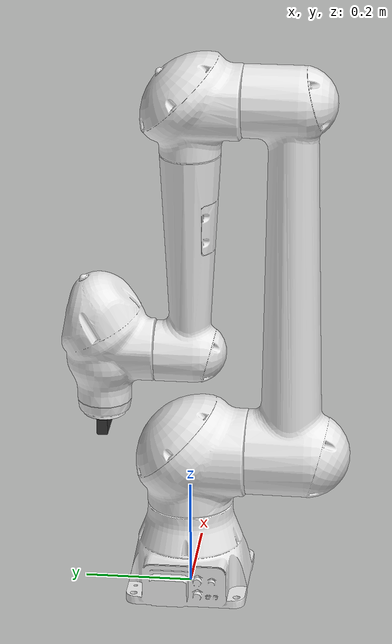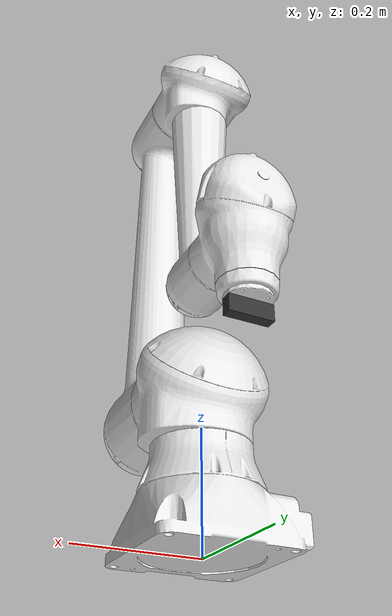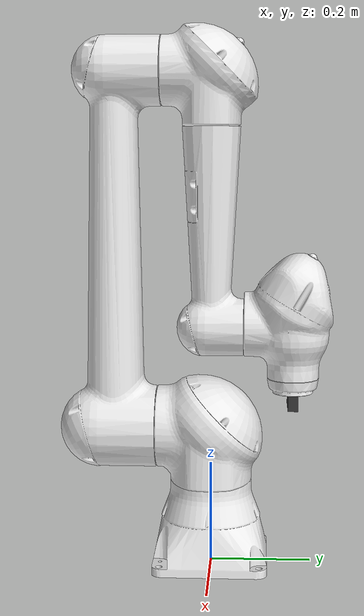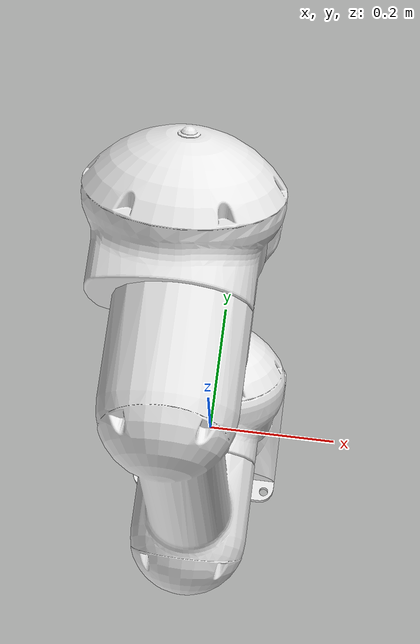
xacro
<?xml version="1.0" ?>
<robot name="motoman_hc10" xmlns:xacro="http://ros.org/wiki/xacro">
  <xacro:include filename="$(find hc10_moveit_config)/urdf/hc10_macro.xacro" />
  <xacro:include filename="$(find hc10_moveit_config)/urdf/hc10_gazebo.xacro" />
  <xacro:motoman_hc10 prefix=""/>
  <xacro:gazebo_hc10 prefix=""/>
  <xacro:include filename="$(find hc10_moveit_config)/urdf/kinect.urdf.xacro" />
  <xacro:sensor_hc10 prefix=""/>

  <link name="camera_depth_frame">
    <visual>
      <geometry>
        <box size="0.03 0.02 0.08"/>
      </geometry>
      <material name="Kinect_gray">
        <color rgba="0.2 0.2 0.2 1.0"/>
      </material>
    </visual>
  </link>

  <!-- Attach Kinect to base -->
  <joint name="tool0-camera" type="fixed">
    <origin xyz="0.0 -0.0 0.015" rpy="${pi} ${-pi/2} 0"/>
    <parent link="tool0"/>
    <child link="camera_depth_frame"/>
  </joint>
</robot>

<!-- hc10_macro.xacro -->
<robot xmlns:xacro="http://ros.org/wiki/xacro">
  <xacro:macro name="motoman_hc10" params="prefix">
    <xacro:include filename="$(find motoman_resources)/urdf/common_materials.xacro"/>
    <!-- link list -->
    <link name="${prefix}base_link">
      <visual>
        <geometry>
          <mesh filename="package://motoman_hc10_support/meshes/hc10/visual/base_link.dae"/>
        </geometry>
        <xacro:material_yaskawa_blue/>
      </visual>
      <collision>
        <geometry>
          <mesh filename="package://motoman_hc10_support/meshes/hc10/collision/base_link.stl"/>
        </geometry>
      </collision>
      <inertial>
        <origin xyz="0 0 0" rpy="0 0 0" />
        <mass value="0.1" />
        <inertia ixx="0.3" ixy="0.0" ixz="0.0" iyy="0.3" iyz="0.0" izz="0.3" />
      </inertial>
      <gazebo reference="${prefix}base_link">
        <material>Gazebo/White</material>
        <mu1>0.2</mu1>
        <mu2>0.2</mu2>
      </gazebo>
    </link>

    <link name="${prefix}link_1_s">
      <visual>
        <geometry>
          <mesh filename="package://motoman_hc10_support/meshes/hc10/visual/link_1_s.dae"/>
        </geometry>
        <xacro:material_yaskawa_blue/>
      </visual>
      <collision>
        <geometry>
          <mesh filename="package://motoman_hc10_support/meshes/hc10/collision/link_1_s.stl"/>
        </geometry>
      </collision>
      <inertial>
        <origin xyz="0 0 0" rpy="0 0 0" />
        <mass value="0.1" />
        <inertia ixx="0.3" ixy="0.0" ixz="0.0" iyy="0.3" iyz="0.0" izz="0.3" />
      </inertial>
      <gazebo reference="${prefix}link_1_s">
        <material>Gazebo/White</material>
        <mu1>0.2</mu1>
        <mu2>0.2</mu2>
      </gazebo>
    </link>

    <link name="${prefix}link_2_l">
      <visual>
        <geometry>
          <mesh filename="package://motoman_hc10_support/meshes/hc10/visual/link_2_l.dae"/>
        </geometry>
        <xacro:material_yaskawa_blue/>
      </visual>
      <collision>
        <geometry>
          <mesh filename="package://motoman_hc10_support/meshes/hc10/collision/link_2_l.stl"/>
        </geometry>
      </collision>
      <inertial>
        <origin xyz="0 0 0" rpy="0 0 0" />
        <mass value="0.1" />
        <inertia ixx="0.3" ixy="0.0" ixz="0.0" iyy="0.3" iyz="0.0" izz="0.3" />
      </inertial>
      <gazebo reference="${prefix}link_2_l">
        <material>Gazebo/White</material>
        <mu1>0.2</mu1>
        <mu2>0.2</mu2>
      </gazebo>
    </link>

    <link name="${prefix}link_3_u">
      <visual>
        <geometry>
          <mesh filename="package://motoman_hc10_support/meshes/hc10/visual/link_3_u.dae"/>
        </geometry>
        <xacro:material_yaskawa_blue/>
      </visual>
      <collision>
        <geometry>
          <mesh filename="package://motoman_hc10_support/meshes/hc10/collision/link_3_u.stl"/>
        </geometry>
      </collision>
      <inertial>
        <origin xyz="0 0 0" rpy="0 0 0" />
        <mass value="0.1" />
        <inertia ixx="0.3" ixy="0.0" ixz="0.0" iyy="0.3" iyz="0.0" izz="0.3" />
      </inertial>
      <gazebo reference="${prefix}link_3_u">
        <material>Gazebo/White</material>
        <mu1>0.2</mu1>
        <mu2>0.2</mu2>
      </gazebo>
    </link>

    <link name="${prefix}link_4_r">
      <visual>
        <geometry>
          <mesh filename="package://motoman_hc10_support/meshes/hc10/visual/link_4_r.dae"/>
        </geometry>
        <xacro:material_yaskawa_blue/>
      </visual>
      <collision>
        <geometry>
          <mesh filename="package://motoman_hc10_support/meshes/hc10/collision/link_4_r.stl"/>
        </geometry>
      </collision>
      <inertial>
        <origin xyz="0 0 0" rpy="0 0 0" />
        <mass value="0.1" />
        <inertia ixx="0.3" ixy="0.0" ixz="0.0" iyy="0.3" iyz="0.0" izz="0.3" />
      </inertial>
      <gazebo reference="${prefix}link_4_r">
        <material>Gazebo/White</material>
        <mu1>0.2</mu1>
        <mu2>0.2</mu2>
      </gazebo>
    </link>

    <link name="${prefix}link_5_b">
      <visual>
        <geometry>
          <mesh filename="package://motoman_hc10_support/meshes/hc10/visual/link_5_b.dae"/>
        </geometry>
        <xacro:material_yaskawa_blue/>
      </visual>
      <collision>
        <geometry>
          <mesh filename="package://motoman_hc10_support/meshes/hc10/collision/link_5_b.stl"/>
        </geometry>
      </collision>
      <inertial>
        <origin xyz="0 0 0" rpy="0 0 0" />
        <mass value="0.1" />
        <inertia ixx="0.3" ixy="0.0" ixz="0.0" iyy="0.3" iyz="0.0" izz="0.3" />
      </inertial>
      <gazebo reference="${prefix}link_5_b">
        <material>Gazebo/White</material>
        <mu1>0.2</mu1>
        <mu2>0.2</mu2>
      </gazebo>
    </link>

    <link name="${prefix}link_6_t">
      <visual>
        <geometry>
          <mesh filename="package://motoman_hc10_support/meshes/hc10/visual/link_6_t.dae"/>
        </geometry>
        <xacro:material_yaskawa_blue/>
      </visual>
      <collision>
        <geometry>
          <mesh filename="package://motoman_hc10_support/meshes/hc10/collision/link_6_t.stl"/>
        </geometry>
      </collision>
      <inertial>
        <origin xyz="0 0 0" rpy="0 0 0" />
        <mass value="0.1" />
        <inertia ixx="0.3" ixy="0.0" ixz="0.0" iyy="0.3" iyz="0.0" izz="0.3" />
      </inertial>
      <gazebo reference="${prefix}link_6_t">
        <material>Gazebo/White</material>
        <mu1>0.2</mu1>
        <mu2>0.2</mu2>
      </gazebo>
    </link>
    <link name="${prefix}tool0"/>
    <!-- end of link list -->

    <!-- joint list -->
    <joint name="${prefix}joint_1_s" type="revolute">
      <parent link="${prefix}base_link"/>
      <child link="${prefix}link_1_s"/>
      <origin xyz="0 0 0.275" rpy="0 0 0" />
      <axis xyz="0 0 1" />
      <limit lower="${radians(-180)}" upper="${radians(180)}" effort="368.48" velocity="${radians(130)}"/>
      <dynamics damping="1.0" friction="1.0"/>
    </joint>

    <joint name="${prefix}joint_2_l" type="revolute">
      <parent link="${prefix}link_1_s"/>
      <child link="${prefix}link_2_l"/>
      <origin xyz="0 0 0" rpy="0 0 0" />
      <axis xyz="0 1 0" />
      <limit lower="${radians(-180)}" upper="${radians(180)}" effort="368.48" velocity="${radians(130)}"/>
      <dynamics damping="1.0" friction="1.0"/>
    </joint>

    <joint name="${prefix}joint_3_u" type="revolute">
      <parent link="${prefix}link_2_l"/>
      <child link="${prefix}link_3_u"/>
      <origin xyz="0 0 0.700" rpy="0 0 0" />
      <axis xyz="0 -1 0" />
      <limit lower="${radians(-5)}" upper="${radians(355)}" effort="141.12" velocity="${radians(180)}"/>
      <dynamics damping="1.0" friction="1.0"/>
    </joint>

    <joint name="${prefix}joint_4_r" type="revolute">
      <parent link="${prefix}link_3_u"/>
      <child link="${prefix}link_4_r"/>
      <origin xyz="0 0 -0.500" rpy="0 0 0" />
      <axis xyz="0 0 1" />
      <limit lower="${radians(-180)}" upper="${radians(180)}" effort="39.20" velocity="${radians(180)}"/>
      <dynamics damping="1.0" friction="1.0"/>
    </joint>

    <joint name="${prefix}joint_5_b" type="revolute">
      <parent link="${prefix}link_4_r"/>
      <child link="${prefix}link_5_b"/>
      <origin xyz="0 0.162 0" rpy="0 0 0" />
      <axis xyz="0 -1 0" />
      <limit lower="${radians(-180)}" upper="${radians(180)}" effort="31.36" velocity="${radians(250)}"/>
      <dynamics damping="1.0" friction="1.0"/>
    </joint>

    <joint name="${prefix}joint_6_t" type="revolute">
      <parent link="${prefix}link_5_b"/>
      <child link="${prefix}link_6_t"/>
      <origin xyz="0 0 0" rpy="0 0 0" />
      <axis xyz="0 0 1" />
      <limit lower="${radians(-180)}" upper="${radians(180)}" effort="31.36" velocity="${radians(250)}"/>
      <dynamics damping="1.0" friction="1.0"/>
    </joint>

    <joint name="${prefix}joint_6_t-tool0" type="fixed">
      <origin xyz="0 0 -0.130" rpy="${pi} 0 0"/>
      <parent link="${prefix}link_6_t"/>
      <child link="${prefix}tool0"/>
      <dynamics damping="1.0" friction="1.0"/>
    </joint>

    <!-- end of joint list -->

    <!-- ROS base_link to Robot Manufacturer World Coordinates transform -->
    <link name="${prefix}base" />
    <joint name="${prefix}base_link-base" type="fixed">
      <origin xyz="0 0 0.275" rpy="0 0 0"/>
      <parent link="${prefix}base_link"/>
      <child link="${prefix}base"/>
    </joint>

  </xacro:macro>

</robot>

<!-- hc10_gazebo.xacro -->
<robot xmlns:xacro="http://ros.org/wiki/xacro">
  <xacro:macro name="gazebo_hc10" params="prefix">

    <xacro:include filename="$(find motoman_resources)/urdf/common_materials.xacro"/>

    <xacro:macro name="control" params="joint">
        <transmission name="${joint}_transmission">
            <type>transmission_interface/SimpleTransmission</type>
            <!-- The EffortJointInterface works best with Gazebo using torques to actuate the joints -->
            <joint name="${joint}">
                <hardwareInterface>hardware_interface/EffortJointInterface</hardwareInterface>
            </joint>
            <actuator name="${joint}_motor">
                <hardwareInterface>hardware_interface/EffortJointInterface</hardwareInterface>
                <mechanicalReduction>1</mechanicalReduction>
            </actuator>
        </transmission>
    </xacro:macro>

    <xacro:control joint="${prefix}joint_1_s"/>
    <xacro:control joint="${prefix}joint_2_l"/>
    <xacro:control joint="${prefix}joint_3_u"/>
    <xacro:control joint="${prefix}joint_4_r"/>
    <xacro:control joint="${prefix}joint_5_b"/>
    <xacro:control joint="${prefix}joint_6_t"/>

    <link name="world"/>
    <joint name="world_joint" type="fixed">
      <origin xyz="0 0 0" rpy="0 0 0"/>  <!-- Place the robot wherever you want -->
      <parent link="world"/>
      <child link="${prefix}base_link"/>  <!-- replace this name with your robot's base link -->
    </joint>

    <gazebo>
        <plugin name="gazebo_ros_control" filename="libgazebo_ros_control.so"/>
    </gazebo>
  </xacro:macro>
</robot>
